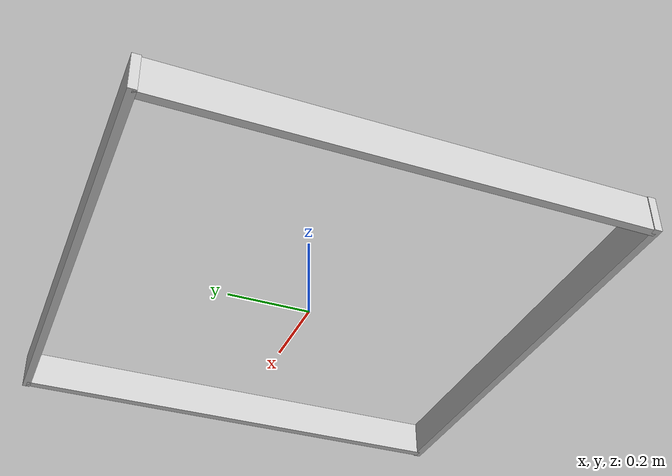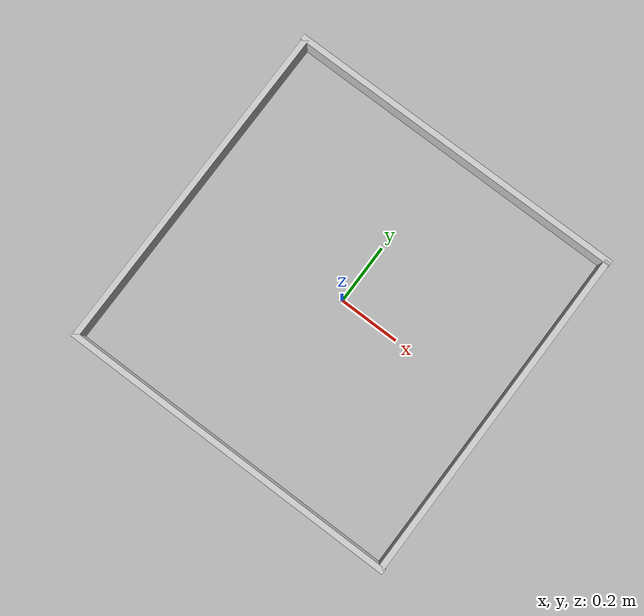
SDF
<?xml version="1.0" ?>
<sdf version="1.4">
  <model name="weazelenclosure">
    <static>true</static>
    <link name="rail01">
      <pose>0.56355 0 0.03175 0 0 0</pose>
      <self_collide>false</self_collide>
      <visual name="rail01_geom_visual">
        <geometry>
          <box>
            <size>0.01905 1.12713 0.0889</size>
          </box>
        </geometry>
        <material>
          <lighting>true</lighting>
          <ambient>0.8 0.8 0.8 1</ambient>
          <diffuse>0.8 0.8 0.8 1</diffuse>
          <specular>0 0 0 1</specular>
          <emissive>0 0 0 1</emissive>
        </material>
      </visual>
      <collision name="rail01_geom_collision">
        <geometry>
          <box>
            <size>0.01905 1.12713 0.0889</size>
          </box>
        </geometry>
        <surface>
          <friction>
            <ode>
              <mu>0.5</mu>
              <mu2>0.5</mu2>
              <fdir1>0 0 0</fdir1>
              <slip1>0.0</slip1>
              <slip2>0.0</slip2>
            </ode>
          </friction>
        </surface>
      </collision>
    </link>
    <link name="rail02">
      <pose>0 0.56356 0.03175 0 0 1.57</pose>
      <self_collide>false</self_collide>
      <visual name="rail02_geom_visual">
        <geometry>
          <box>
            <size> 0.01905 1.1525 0.0889</size>
          </box>
        </geometry>
        <material>
          <lighting>true</lighting>
          <ambient>0.8 0.8 0.8 1</ambient>
          <diffuse>0.8 0.8 0.8 1</diffuse>
          <specular>0 0 0 1</specular>
          <emissive>0 0 0 1</emissive>
        </material>
      </visual>
      <collision name="rail02_geom_collision">
        <geometry>
          <box>
            <size> 0.01905 1.1525 0.0889</size>
          </box>
        </geometry>
        <surface>
          <friction>
            <ode>
              <mu>0.5</mu>
              <mu2>0.5</mu2>
              <fdir1>0 0 0</fdir1>
              <slip1>0.0</slip1>
              <slip2>0.0</slip2>
            </ode>
          </friction>
        </surface>
      </collision>
    </link>
    <link name="rail03">
      <pose>-0.56355 0 0.03175 0 0 3.14</pose>
      <self_collide>false</self_collide>
      <visual name="rail03_geom_visual">
        <geometry>
          <box>
            <size>0.01905 1.12713 0.0889</size>
          </box>
        </geometry>
        <material>
          <lighting>true</lighting>
          <ambient>0.8 0.8 0.8 1</ambient>
          <diffuse>0.8 0.8 0.8 1</diffuse>
          <specular>0 0 0 1</specular>
          <emissive>0 0 0 1</emissive>
        </material>
      </visual>
      <collision name="rail03_geom_collision">
        <geometry>
          <box>
            <size>0.01905 1.12713 0.0889</size>
          </box>
        </geometry>
        <surface>
          <friction>
            <ode>
              <mu>0.5</mu>
              <mu2>0.5</mu2>
              <fdir1>0 0 0</fdir1>
              <slip1>0.0</slip1>
              <slip2>0.0</slip2>
            </ode>
          </friction>
        </surface>
      </collision>
    </link>
    <link name="rail04">
      <pose>0 -0.56356 0.03175 0 0 4.71</pose>
      <self_collide>false</self_collide>
      <visual name="rail04_geom_visual">
        <geometry>
          <box>
            <size> 0.01905 1.1525 0.0889</size>
          </box>
        </geometry>
        <material>
          <lighting>true</lighting>
          <ambient>0.8 0.8 0.8 1</ambient>
          <diffuse>0.8 0.8 0.8 1</diffuse>
          <specular>0 0 0 1</specular>
          <emissive>0 0 0 1</emissive>
        </material>
      </visual>
      <collision name="rail04_geom_collision">
        <geometry>
          <box>
            <size> 0.01905 1.1525 0.0889</size>
          </box>
        </geometry>
        <surface>
          <friction>
            <ode>
              <mu>0.5</mu>
              <mu2>0.5</mu2>
              <fdir1>0 0 0</fdir1>
              <slip1>0.0</slip1>
              <slip2>0.0</slip2>
            </ode>
          </friction>
        </surface>
      </collision>
    </link>
  </model>
</sdf>
